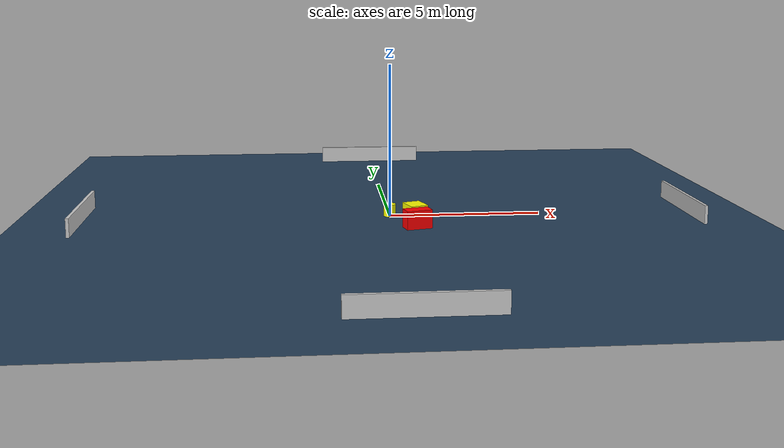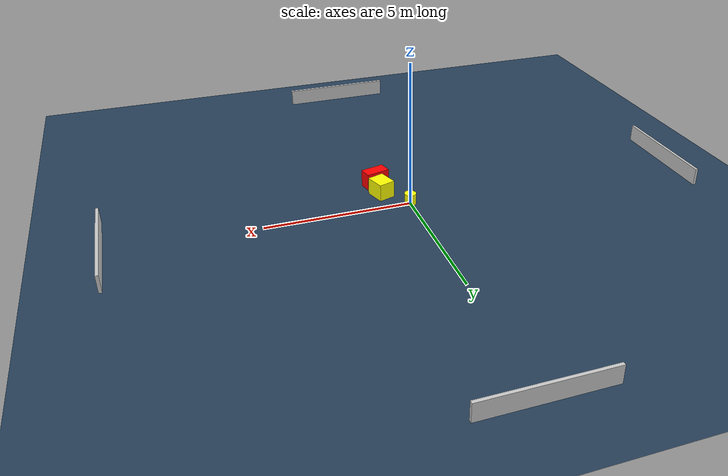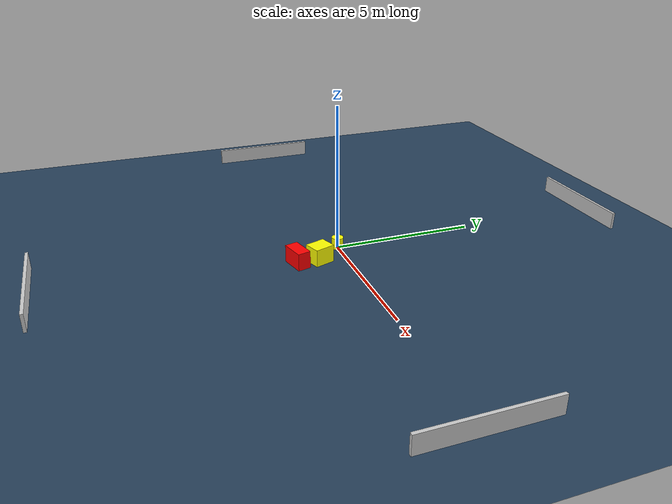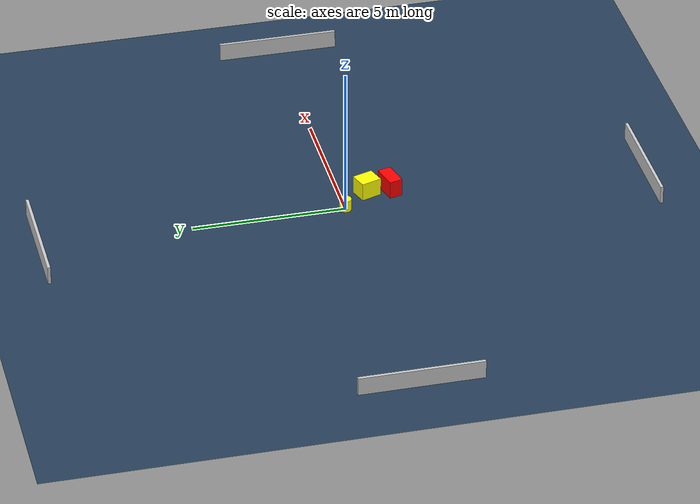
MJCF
<?xml version="1.0" ?>
<mujoco model="generated_environment">
  <option timestep="0.01" integrator="RK4" cone="elliptic"/>
  <default>
    <geom density="1"/>
  </default>
  <asset>
    <texture builtin="gradient" height="3072" name="skybox" rgb1="0.3 0.5 0.7" rgb2="0 0 0" type="skybox" width="512"/>
    <texture builtin="checker" height="300" name="groundplane" rgb1="0.2 0.3 0.4" rgb2="0.1 0.2 0.3" type="2d" width="300"/>
    <material name="groundplane" reflectance="0.2" texrepeat="5 5" texture="groundplane"/>
  </asset>
  <worldbody>
    <light dir="0 0 -1" directional="true" pos="0 0 1.5"/>
    <geom condim="3" friction="0.5 0.005 0.001" material="groundplane" name="floor" pos="0 0 0" size="0 0 0.05" type="plane"/>
    <body name="walls">
      <geom name="wall_1" condim="4" pos="-10.0 0.0 0.3" rgba="0.800000011920929 0.800000011920929 0.800000011920929 1.0" size="0.05 2.0 0.3" type="box"/>
      <geom name="wall_2" condim="4" pos="10.0 0.0 0.3" rgba="0.800000011920929 0.800000011920929 0.800000011920929 1.0" size="0.05 2.0 0.3" type="box"/>
      <geom name="wall_3" condim="4" pos="0.0 -10.0 0.3" rgba="0.800000011920929 0.800000011920929 0.800000011920929 1.0" size="2.0 0.05 0.3" type="box"/>
      <geom name="wall_4" condim="4" pos="0.0 10.0 0.3" rgba="0.800000011920929 0.800000011920929 0.800000011920929 1.0" size="2.0 0.05 0.3" type="box"/>
    </body>
    <body name="robot">
      <joint name="joint_x" type="slide" pos="0 0 0" axis="1 0 0"/>
      <joint name="joint_y" type="slide" pos="0 0 0" axis="0 1 0"/>
      <geom name="robot" type="cylinder" pos="0.0 0.0 0.2" size="0.2 0.2 0.0" mass="5.0" friction="1.0 0.005 0.0001" condim="4" rgba="1.0 1.0 0.0 1.0"/>
    </body>
    <body name="obstacle_1_movable">
      <geom name="obstacle_1_movable" condim="4" pos="0.7483179423673535 -0.8958100759470815 0.3" euler="0 0 288.8580138979113" friction="0.0 0.005 0.001" rgba="1.0 1.0 0.0 1.0" size="0.34822101708737085 0.29130314053944695 0.3" type="box" mass="0.1"/>
      <joint type="free"/>
    </body>
    <body name="obstacle_2_static">
      <geom name="obstacle_2_static" condim="4" pos="0.7394846941985036 -1.6628070118284115 0.3" euler="0 0 194.13495097798915" friction="0.0 0.005 0.001" rgba="1.0 0.0 0.0 1.0" size="0.417679758567293 0.22378029316247242 0.3" type="box"/>
    </body>
  </worldbody>
  <actuator>
    <motor name="actuator_x" joint="joint_x" gear="1" ctrlrange="-1 1"/>
    <motor name="actuator_y" joint="joint_y" gear="1" ctrlrange="-1 1"/>
  </actuator>
</mujoco>
